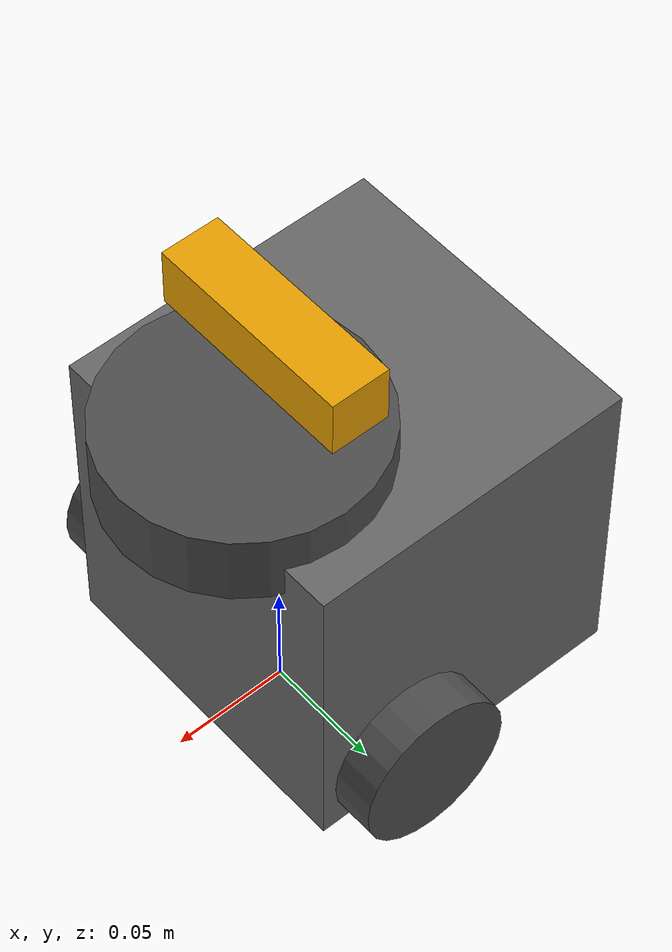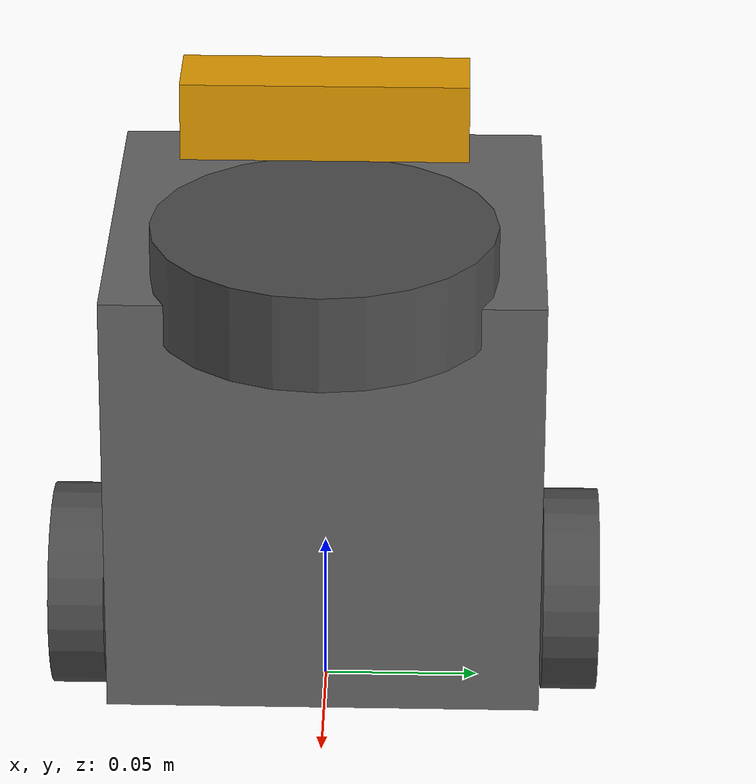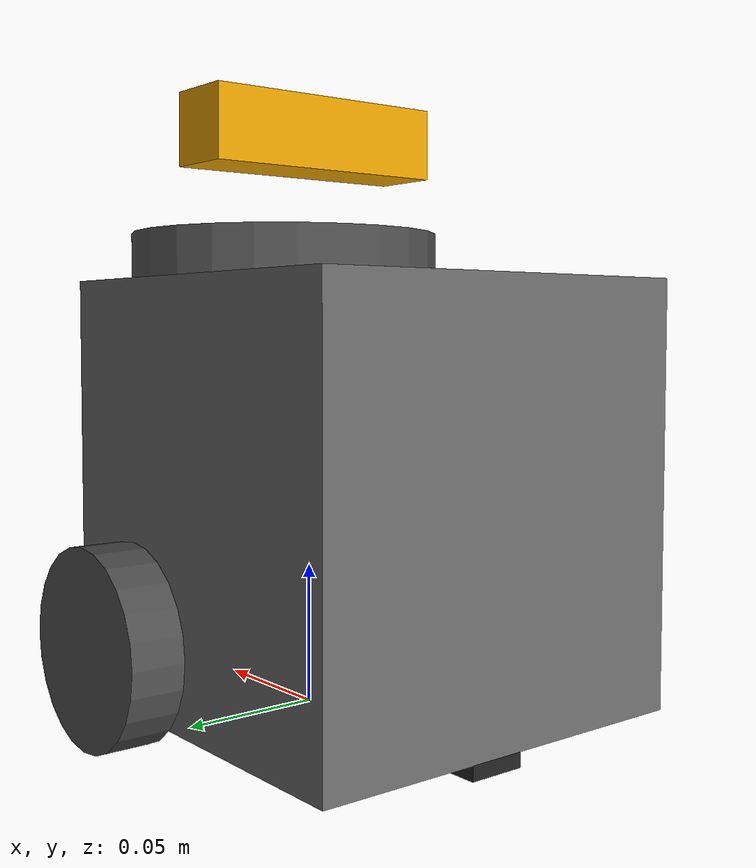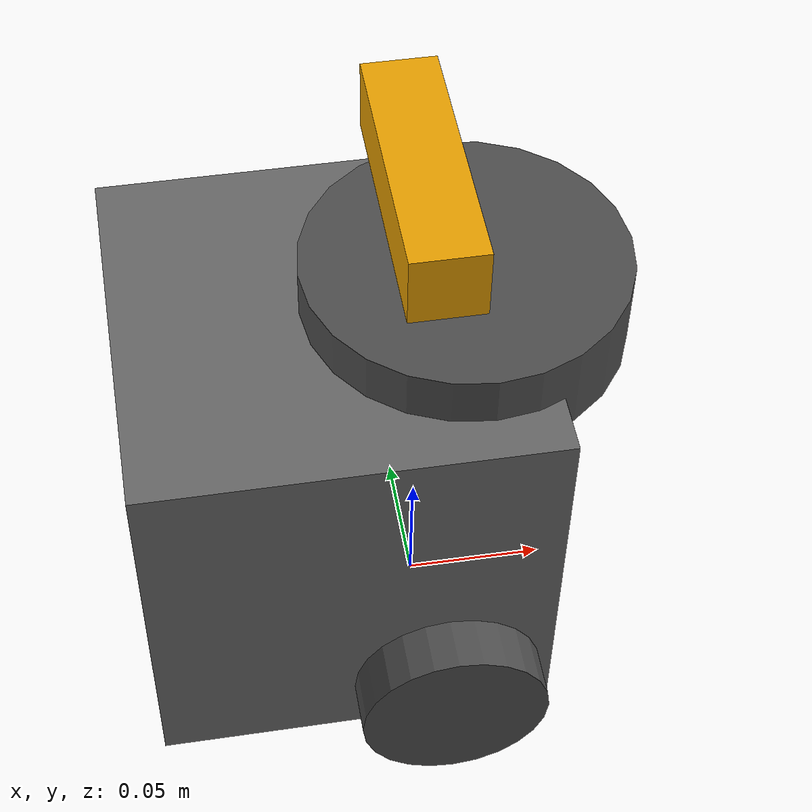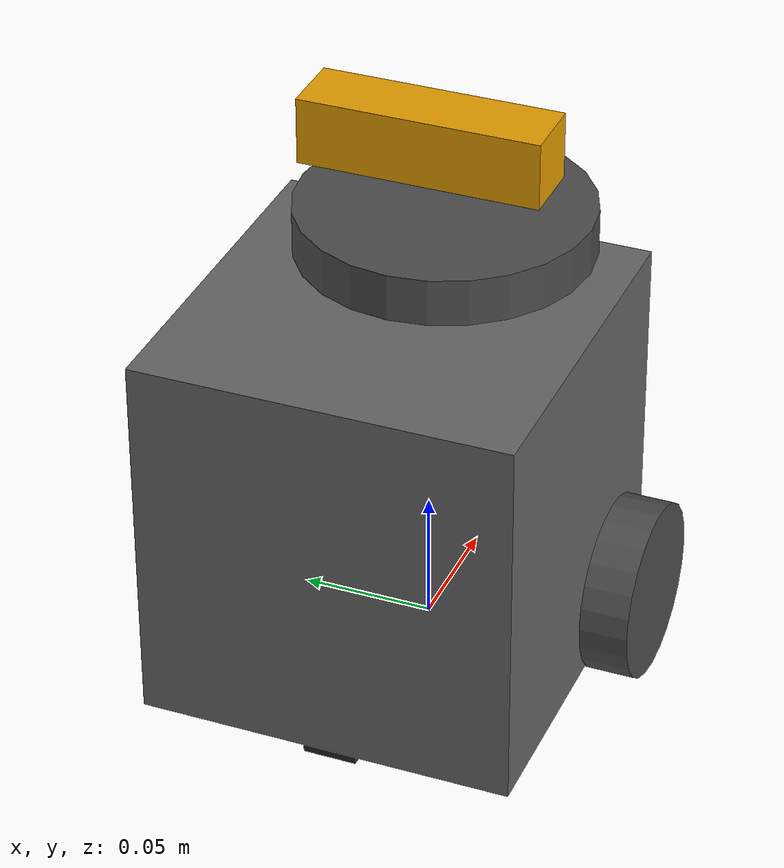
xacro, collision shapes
<?xml version="1.0" ?>
<robot name="turtlebot3_burger" xmlns:xacro="http://ros.org/wiki/xacro">
  <xacro:include filename="$(find car_sim_description)/urdf/common/common_properties.xacro"/>
  <xacro:include filename="$(find car_sim_description)/urdf/turtlebot/turtlebot3_burger.gazebo.xacro"/>

  <link name="base_footprint"/>

  <joint name="base_joint" type="fixed">
    <parent link="base_footprint"/>
    <child link="base_link"/>
    <origin xyz="0.0 0.0 0.010" rpy="0 0 0"/>
  </joint>

  <link name="base_link">
    <visual>
      <origin xyz="-0.032 0 0.0" rpy="0 0 0"/>
      <geometry>
        <mesh filename="package://car_sim_description/meshes/bases/burger_base.stl" scale="0.001 0.001 0.001"/>
      </geometry>
      <material name="light_black"/>
    </visual>

    <collision>
      <origin xyz="-0.032 0 0.070" rpy="0 0 0"/>
      <geometry>
        <box size="0.140 0.140 0.143"/>
      </geometry>
    </collision>

    <inertial>
      <origin xyz="0 0 0" rpy="0 0 0"/>
      <mass value="8.2573504e-01"/>
      <inertia ixx="2.2124416e-03" ixy="-1.2294101e-05" ixz="3.4938785e-05"
               iyy="2.1193702e-03" iyz="-5.0120904e-06"
               izz="2.0064271e-03" />
    </inertial>
  </link>

  <joint name="wheel_left_joint" type="continuous">
    <parent link="base_link"/>
    <child link="wheel_left_link"/>
    <origin xyz="0.0 0.08 0.023" rpy="-1.57 0 0"/>
    <axis xyz="0 0 1"/>
  </joint>

  <link name="wheel_left_link">
    <visual>
      <origin xyz="0 0 0" rpy="1.57 0 0"/>
      <geometry>
        <mesh filename="package://car_sim_description/meshes/wheels/left_tire.stl" scale="0.001 0.001 0.001"/>
      </geometry>
      <material name="dark"/>
    </visual>

    <collision>
      <origin xyz="0 0 0" rpy="0 0 0"/>
      <geometry>
        <cylinder length="0.018" radius="0.033"/>
      </geometry>
    </collision>

    <inertial>
      <origin xyz="0 0 0" />
      <mass value="2.8498940e-02" />
      <inertia ixx="1.1175580e-05" ixy="-4.2369783e-11" ixz="-5.9381719e-09"
               iyy="1.1192413e-05" iyz="-1.4400107e-11"
               izz="2.0712558e-05" />
      </inertial>
  </link>

  <joint name="wheel_right_joint" type="continuous">
    <parent link="base_link"/>
    <child link="wheel_right_link"/>
    <origin xyz="0.0 -0.080 0.023" rpy="-1.57 0 0"/>
    <axis xyz="0 0 1"/>
  </joint>

  <link name="wheel_right_link">
    <visual>
      <origin xyz="0 0 0" rpy="1.57 0 0"/>
      <geometry>
        <mesh filename="package://car_sim_description/meshes/wheels/right_tire.stl" scale="0.001 0.001 0.001"/>
      </geometry>
      <material name="dark"/>
    </visual>

    <collision>
      <origin xyz="0 0 0" rpy="0 0 0"/>
      <geometry>
        <cylinder length="0.018" radius="0.033"/>
      </geometry>
    </collision>

    <inertial>
      <origin xyz="0 0 0" />
      <mass value="2.8498940e-02" />
      <inertia ixx="1.1175580e-05" ixy="-4.2369783e-11" ixz="-5.9381719e-09"
               iyy="1.1192413e-05" iyz="-1.4400107e-11"
               izz="2.0712558e-05" />
      </inertial>
  </link>

  <joint name="caster_back_joint" type="fixed">
    <parent link="base_link"/>
    <child link="caster_back_link"/>
    <origin xyz="-0.081 0 -0.004" rpy="-1.57 0 0"/>
  </joint>

  <link name="caster_back_link">
    <collision>
      <origin xyz="0 0.001 0" rpy="0 0 0"/>
      <geometry>
        <box size="0.030 0.009 0.020"/>
      </geometry>
    </collision>

    <inertial>
      <origin xyz="0 0 0" />
      <mass value="0.005" />
      <inertia ixx="0.001" ixy="0.0" ixz="0.0"
               iyy="0.001" iyz="0.0"
               izz="0.001" />
    </inertial>
  </link>

  <joint name="imu_joint" type="fixed">
    <parent link="base_link"/>
    <child link="imu_link"/>
    <origin xyz="-0.032 0 0.068" rpy="0 0 0"/>
  </joint>

  <link name="imu_link"/>

  <joint name="scan_joint" type="fixed">
    <parent link="base_link"/>
    <child link="base_scan"/>
    <origin xyz="0 0 0.15" rpy="0 0 0"/>
  </joint>

  <link name="base_scan">
    <visual>
      <origin xyz="0 0 0.0" rpy="0 0 0"/>
      <geometry>
        <mesh filename="package://car_sim_description/meshes/sensors/lds.stl" scale="0.001 0.001 0.001"/>
      </geometry>
      <material name="dark"/>
    </visual>

    <collision>
      <origin xyz="0.015 0 -0.0065" rpy="0 0 0"/>
      <geometry>
        <cylinder length="0.0315" radius="0.055"/>
      </geometry>
    </collision>

    <inertial>
      <mass value="0" />
      <origin xyz="0 0 0" />
      <inertia ixx="0.001" ixy="0.0" ixz="0.0"
               iyy="0.001" iyz="0.0"
               izz="0.001" />
    </inertial>
  </link>

  <xacro:include filename="$(find realsense_ros_gazebo)/xacro/depthcam.xacro"/>

  <xacro:realsense_d435 sensor_name="d435_f" parent_link="base_link" rate="20">
    <origin rpy="0 0 0 " xyz="0 0 0.18"/>
  </xacro:realsense_d435>

</robot>

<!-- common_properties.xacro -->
<robot name="xacro_properties" xmlns:xacro="http://ros.org/wiki/xacro">
  <xacro:property name="M_PI" value="3.1415926535897931" />

  <!-- Init colour -->
  <material name="black">
      <color rgba="0.0 0.0 0.0 1.0"/>
  </material>

  <material name="dark">
    <color rgba="0.3 0.3 0.3 1.0"/>
  </material>
  <material name="light_black">
    <color rgba="0.4 0.4 0.4 1.0"/>
  </material>

  <material name="blue">
    <color rgba="0.0 0.0 0.8 1.0"/>
  </material>

  <material name="green">
    <color rgba="0.0 0.8 0.0 1.0"/>
  </material>

  <material name="grey">
    <color rgba="0.5 0.5 0.5 1.0"/>
  </material>

  <material name="orange">
    <color rgba="${255/255} ${108/255} ${10/255} 1.0"/>
  </material>

  <material name="brown">
    <color rgba="${222/255} ${207/255} ${195/255} 1.0"/>
  </material>

  <material name="red">
    <color rgba="0.8 0.0 0.0 1.0"/>
  </material>

  <material name="white">
    <color rgba="1.0 1.0 1.0 1.0"/>
  </material>
</robot>

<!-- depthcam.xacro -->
<robot xmlns:xacro="http://www.ros.org/wiki/xacro">

  <xacro:include filename="$(find realsense_ros_gazebo)/xacro/inertia_calc.xacro"/>

  <!-- INTEL REALSENSE D435 -->

  <xacro:macro name="realsense_d435" params="sensor_name parent_link *origin rate">

    <xacro:property name="d435_cam_depth_to_left_ir_offset" value="0.0"/>
    <xacro:property name="d435_cam_depth_to_right_ir_offset" value="-0.050"/>
    <xacro:property name="d435_cam_depth_to_color_offset" value="0.015"/>
    <xacro:property name="d435_cam_width" value="0.090"/>
    <xacro:property name="d435_cam_height" value="0.025"/>
    <xacro:property name="d435_cam_depth" value="0.02505"/>
    <xacro:property name="d435_cam_mass" value="0.00000001"/>
    <xacro:property name="d435_cam_mount_from_center_offset" value="0.0149"/>
    <xacro:property name="d435_cam_depth_px" value="${d435_cam_mount_from_center_offset}"/>
    <xacro:property name="d435_cam_depth_py" value="0.0175"/>
    <xacro:property name="d435_cam_depth_pz" value="${d435_cam_height/2}"/>

    <!-- camera body, with origin at bottom screw mount -->
    <joint name="${sensor_name}_joint" type="fixed">
      <xacro:insert_block name="origin" />
      <parent link="${parent_link}"/>
      <child link="${sensor_name}_bottom_screw_frame" />
    </joint>
    <link name="${sensor_name}_bottom_screw_frame"/>

    <joint name="${sensor_name}_link_joint" type="fixed">
      <origin xyz="0 ${d435_cam_depth_py} ${d435_cam_depth_pz}" rpy="0 0 0"/>
      <parent link="${sensor_name}_bottom_screw_frame"/>
      <child link="${sensor_name}_link" />
    </joint>

    <link name="${sensor_name}_link">
      <visual>
        <origin xyz="${d435_cam_mount_from_center_offset} ${-d435_cam_depth_py} 0" rpy="${pi/2} 0 ${pi/2}"/>
        <geometry>
          <mesh filename="package://realsense_ros_gazebo/meshes/realsense_d435.stl" />
        </geometry>
      </visual>
      <collision>
        <origin xyz="0 ${-d435_cam_depth_py} 0" rpy="0 0 0"/>
        <geometry>
          <box size="${d435_cam_depth} ${d435_cam_width} ${d435_cam_height}"/>
        </geometry>
      </collision>
      <inertial>
        <mass value="${d435_cam_mass}" />
        <origin xyz="0 ${-d435_cam_depth_py} 0" rpy="0 0 0"/>
        <xacro:box_inertia m="${d435_cam_mass}" x="${d435_cam_depth}" y="${d435_cam_width}" z="${d435_cam_height}"/>
      </inertial>
    </link>

    <!-- camera depth joints and links -->
    <joint name="${sensor_name}_depth_joint" type="fixed">
      <origin xyz="0 0 0" rpy="0 0 0"/>
      <parent link="${sensor_name}_link"/>
      <child link="${sensor_name}_depth_frame" />
    </joint>
    <link name="${sensor_name}_depth_frame"/>

    <joint name="${sensor_name}_depth_optical_joint" type="fixed">
      <origin xyz="0 0 0" rpy="${-pi/2} 0 ${-pi/2}" />
      <parent link="${sensor_name}_depth_frame" />
      <child link="${sensor_name}_depth_optical_frame" />
    </joint>
    <link name="${sensor_name}_depth_optical_frame"/>

    <!-- camera left IR joints and links -->
    <joint name="${sensor_name}_left_ir_joint" type="fixed">
      <origin xyz="0 ${d435_cam_depth_to_left_ir_offset} 0" rpy="0 0 0" />
      <parent link="${sensor_name}_depth_frame" />
      <child link="${sensor_name}_left_ir_frame" />
    </joint>
    <link name="${sensor_name}_left_ir_frame"/>

    <joint name="${sensor_name}_left_ir_optical_joint" type="fixed">
      <origin xyz="0 0 0" rpy="${-pi/2} 0 ${-pi/2}" />
      <parent link="${sensor_name}_left_ir_frame" />
      <child link="${sensor_name}_left_ir_optical_frame" />
    </joint>
    <link name="${sensor_name}_left_ir_optical_frame"/>

    <!-- camera right IR joints and links -->
    <joint name="${sensor_name}_right_ir_joint" type="fixed">
      <origin xyz="0 ${d435_cam_depth_to_right_ir_offset} 0" rpy="0 0 0" />
      <parent link="${sensor_name}_depth_frame" />
      <child link="${sensor_name}_right_ir_frame" />
    </joint>
    <link name="${sensor_name}_right_ir_frame"/>

    <joint name="${sensor_name}_right_ir_optical_joint" type="fixed">
      <origin xyz="0 0 0" rpy="${-pi/2} 0 ${-pi/2}" />
      <parent link="${sensor_name}_right_ir_frame" />
      <child link="${sensor_name}_right_ir_optical_frame" />
    </joint>
    <link name="${sensor_name}_right_ir_optical_frame"/>

    <!-- camera color joints and links -->
    <joint name="${sensor_name}_color_joint" type="fixed">
      <origin xyz="0 ${d435_cam_depth_to_color_offset} 0" rpy="0 0 0" />
      <parent link="${sensor_name}_depth_frame" />
      <child link="${sensor_name}_color_frame" />
    </joint>
    <link name="${sensor_name}_color_frame"/>

    <joint name="${sensor_name}_color_optical_joint" type="fixed">
      <origin xyz="0 0 0" rpy="${-pi/2} 0 ${-pi/2}" />
      <parent link="${sensor_name}_color_frame" />
      <child link="${sensor_name}_color_optical_frame" />
    </joint>
    <link name="${sensor_name}_color_optical_frame"/>

    <!-- gazebo plugin -->

    <xacro:property name="deg_to_rad" value="0.01745329251994329577" />

    <gazebo reference="${sensor_name}_link">
      <self_collide>0</self_collide>
      <enable_wind>0</enable_wind>
      <kinematic>0</kinematic>
      <gravity>1</gravity>
      <mu2>1</mu2>
      <fdir1>0 0 0</fdir1>
      <kp>1e+13</kp>
      <kd>1</kd>

      <sensor name="${sensor_name}_color" type="camera">
        <camera name="${sensor_name}">
          <horizontal_fov>${69.4*deg_to_rad}</horizontal_fov>
          <image>
            <width>640</width>
            <height>480</height>
            <format>RGB_INT8</format>
          </image>
          <clip>
            <near>0.1</near>
            <far>100</far>
          </clip>
          <noise>
            <type>gaussian</type>
            <mean>0.0</mean>
            <stddev>0.007</stddev>
          </noise>
        </camera>
        <always_on>1</always_on>
        <update_rate>30</update_rate>
        <visualize>1</visualize>
      </sensor>
      <sensor name="${sensor_name}_ired1" type="camera">
        <camera name="${sensor_name}">
          <horizontal_fov>${85.2*deg_to_rad}</horizontal_fov>
          <image>
            <width>1280</width>
            <height>720</height>
            <format>L_INT8</format>
          </image>
          <clip>
            <near>0.1</near>
            <far>100</far>
          </clip>
          <noise>
            <type>gaussian</type>
            <mean>0.0</mean>
            <stddev>0.05</stddev>
          </noise>
        </camera>
        <always_on>1</always_on>
        <update_rate>90</update_rate>
        <visualize>0</visualize>
      </sensor>
      <sensor name="${sensor_name}_ired2" type="camera">
        <camera name="${sensor_name}">
          <horizontal_fov>${85.2*deg_to_rad}</horizontal_fov>
          <image>
            <width>1280</width>
            <height>720</height>
            <format>L_INT8</format>
          </image>
          <clip>
            <near>0.1</near>
            <far>100</far>
          </clip>
          <noise>
            <type>gaussian</type>
            <mean>0.0</mean>
            <stddev>0.05</stddev>
          </noise>
        </camera>
        <always_on>1</always_on>
        <update_rate>90</update_rate>
        <visualize>0</visualize>
      </sensor>
      <sensor name="${sensor_name}_depth" type="depth">
        <camera name="${sensor_name}">
          <horizontal_fov>${85.2*deg_to_rad}</horizontal_fov>
          <image>
            <width>1280</width>
            <height>720</height>
          </image>
          <clip>
            <near>0.1</near>
            <far>100</far>
          </clip>
          <noise>
            <type>gaussian</type>
            <mean>0.0</mean>
            <stddev>0.100</stddev>
          </noise>
        </camera>
        <always_on>1</always_on>
        <update_rate>90</update_rate>
        <visualize>0</visualize>
      </sensor>
    </gazebo>

    <gazebo>
      <plugin name="${sensor_name}" filename="librealsense_gazebo_plugin.so">
        <prefix>${sensor_name}_</prefix>
        <depthUpdateRate>${rate}</depthUpdateRate>
        <colorUpdateRate>${rate}</colorUpdateRate>
        <infraredUpdateRate>${rate}</infraredUpdateRate>
        <depthTopicName>depth/image_raw</depthTopicName>
        <depthCameraInfoTopicName>depth/camera_info</depthCameraInfoTopicName>
        <colorTopicName>color/image_raw</colorTopicName>
        <colorCameraInfoTopicName>color/camera_info</colorCameraInfoTopicName>
        <infrared1TopicName>infra1/image_raw</infrared1TopicName>
        <infrared1CameraInfoTopicName>infra1/camera_info</infrared1CameraInfoTopicName>
        <infrared2TopicName>infra2/image_raw</infrared2TopicName>
        <infrared2CameraInfoTopicName>infra2/camera_info</infrared2CameraInfoTopicName>
        <colorOpticalframeName>${sensor_name}_color_optical_frame</colorOpticalframeName>
        <depthOpticalframeName>${sensor_name}_depth_optical_frame</depthOpticalframeName>
        <infrared1OpticalframeName>${sensor_name}_infrared1_optical_frame</infrared1OpticalframeName>
        <infrared2OpticalframeName>${sensor_name}_infrared2_optical_frame</infrared2OpticalframeName>
        <rangeMinDepth>0.2</rangeMinDepth>
        <rangeMaxDepth>10.0</rangeMaxDepth>
        <pointCloud>false</pointCloud>
        <pointCloudTopicName>depth/color/points</pointCloudTopicName>
        <pointCloudCutoff>0.25</pointCloudCutoff>
        <pointCloudCutoffMax>9.0</pointCloudCutoffMax>
      </plugin>
    </gazebo>

  </xacro:macro>

  <!-- INTEL REALSENSE R200 -->

  <xacro:macro name="realsense_R200" params="sensor_name parent_link rate *origin">

      <link name="${sensor_name}_R200_camera">
          <visual>
              <origin rpy="0 0 0" xyz="0 0 0"/>
              <geometry>
                  <mesh filename="package://realsense_ros_gazebo/meshes/realsense_r200/meshes/realsense.dae"/>
              </geometry>
          </visual>
          <collision>
              <geometry>
                  <box size="0.0078 0.130 0.0192"/>
              </geometry>
          </collision>
          <inertial>
              <mass value="0.00000001"/>
              <origin rpy="0 0 0" xyz="0 0 0"/>
              <inertia ixx="9.108e-05"
                       ixy="0"
                       ixz="0"
                       iyy="2.51e-06"
                       iyz="0"
                       izz="8.931e-05"/>
          </inertial>
      </link>

      <joint name="${sensor_name}_joint" type="fixed">
          <parent link="${parent_link}"/>
          <child link="${sensor_name}_R200_camera"/>
          <xacro:insert_block name="origin"/>
      </joint>

      <link name="${sensor_name}_color" />
      <link name="${sensor_name}_depth" />
      <link name="${sensor_name}_ired1" />
      <link name="${sensor_name}_ired2" />

      <joint name="${sensor_name}_color_joint" type="fixed">
          <parent link="${sensor_name}_R200_camera" />
          <child link="${sensor_name}_color" />
          <origin xyz="0 -0.046 0.004" rpy="${pi/2} ${pi} ${pi/2}"/>
      </joint>

      <joint name="${sensor_name}_depth_joint" type="fixed">
          <parent link="${sensor_name}_R200_camera" />
          <child link="${sensor_name}_depth" />
          <origin xyz="0 -0.03 0.004" rpy="0 0 0"/>
      </joint>

      <joint name="${sensor_name}_ired1_joint" type="fixed">
          <parent link="${sensor_name}_R200_camera" />
          <child link="${sensor_name}_ired1" />
          <origin xyz="0 -0.06 0.004" rpy="0 0 0"/>
      </joint>

      <joint name="${sensor_name}_ired2_joint" type="fixed">
          <parent link="${sensor_name}_R200_camera" />
          <child link="${sensor_name}_ired2" />
          <origin xyz="0 0.01 0.004" rpy="0 0 0"/>
      </joint>

      <gazebo reference="${sensor_name}_R200_camera">

          <self_collide>0</self_collide>
          <enable_wind>0</enable_wind>
          <kinematic>0</kinematic>
          <gravity>1</gravity>
          <mu>1</mu>
          <mu2>1</mu2>
          <fdir1>0 0 0</fdir1>
          <slip1>0</slip1>
          <slip2>0</slip2>
          <kp>1e+13</kp>
          <kd>1</kd>
          <max_vel>0.01</max_vel>
          <min_depth>0</min_depth>

          <sensor name="${sensor_name}_color" type="camera">
              <pose frame="">0 -0.046 0.004 0 0 0</pose>
              <camera name="${sensor_name}_R200_camera">
              <horizontal_fov>1.047</horizontal_fov>
              <image>
                  <width>640</width>
                  <height>480</height>
                  <format>RGB_INT8</format>
              </image>
              <clip>
                  <near>0.1</near>
                  <far>100</far>
              </clip>
              <noise>
                  <type>gaussian</type>
                  <mean>0.0</mean>
                  <stddev>0.007</stddev>
              </noise>
              </camera>
              <always_on>1</always_on>
              <update_rate>${rate}</update_rate>
              <visualize>1</visualize>
          </sensor>
          <sensor name="${sensor_name}_ired1" type="camera">
              <pose frame="">0 -0.06 0.004 0 0 0</pose>
              <camera name="${sensor_name}_R200_camera">
              <horizontal_fov>1.047</horizontal_fov>
              <image>
                  <width>640</width>
                  <height>480</height>
                  <format>L_INT8</format>
              </image>
              <clip>
                  <near>0.1</near>
                  <far>100</far>
              </clip>
              <noise>
                  <type>gaussian</type>
                  <mean>0.0</mean>
                  <stddev>0.05</stddev>
              </noise>
              </camera>
              <always_on>1</always_on>
              <update_rate>${rate}</update_rate>
              <visualize>0</visualize>
          </sensor>
          <sensor name="${sensor_name}_ired2" type="camera">
              <pose frame="">0 0.01 0.004 0 0 0</pose>
              <camera name="${sensor_name}_R200_camera">
              <horizontal_fov>1.047</horizontal_fov>
              <image>
                  <width>640</width>
                  <height>480</height>
                  <format>L_INT8</format>
              </image>
              <clip>
                  <near>0.1</near>
                  <far>100</far>
              </clip>
              <noise>
                  <type>gaussian</type>
                  <mean>0.0</mean>
                  <stddev>0.05</stddev>
              </noise>
              </camera>
              <always_on>1</always_on>
              <update_rate>${rate}</update_rate>
              <visualize>0</visualize>
          </sensor>
          <sensor name="${sensor_name}_depth" type="depth">
              <pose frame="">0 -0.03 0.004 0 0 0</pose>
              <camera name="${sensor_name}_R200_camera">
              <horizontal_fov>1.047</horizontal_fov>
              <image>
                      <width>640</width>
                      <height>480</height>
              </image>
              <clip>
                      <near>0.1</near>
                      <far>100</far>
              </clip>
              <noise>
                      <type>gaussian</type>
                      <mean>0.0</mean>
                      <stddev>0.100</stddev>
              </noise>
              </camera>
              <always_on>1</always_on>
              <update_rate>60</update_rate>
              <visualize>0</visualize>
          </sensor>
      </gazebo>

      <gazebo>
        <plugin name="${sensor_name}" filename="librealsense_gazebo_plugin.so">
          <prefix>${sensor_name}_</prefix>
          <depthUpdateRate>${rate}</depthUpdateRate>
          <colorUpdateRate>${rate}</colorUpdateRate>
          <infraredUpdateRate>${rate}</infraredUpdateRate>
          <depthTopicName>depth/image_raw</depthTopicName>
          <depthCameraInfoTopicName>depth/camera_info</depthCameraInfoTopicName>
          <colorTopicName>color/image_raw</colorTopicName>
          <colorCameraInfoTopicName>color/camera_info</colorCameraInfoTopicName>
          <infrared1TopicName>infra1/image_raw</infrared1TopicName>
          <infrared1CameraInfoTopicName>infra1/camera_info</infrared1CameraInfoTopicName>
          <infrared2TopicName>infra2/image_raw</infrared2TopicName>
          <infrared2CameraInfoTopicName>infra2/camera_info</infrared2CameraInfoTopicName>
          <colorOpticalframeName>${sensor_name}_color_optical_frame</colorOpticalframeName>
          <depthOpticalframeName>${sensor_name}_depth_optical_frame</depthOpticalframeName>
          <infrared1OpticalframeName>${sensor_name}_infrared1_optical_frame</infrared1OpticalframeName>
          <infrared2OpticalframeName>${sensor_name}_infrared2_optical_frame</infrared2OpticalframeName>
          <rangeMinDepth>0.2</rangeMinDepth>
          <rangeMaxDepth>10.0</rangeMaxDepth>
          <pointCloud>false</pointCloud>
          <pointCloudTopicName>depth/color/points</pointCloudTopicName>
          <pointCloudCutoff>0.25</pointCloudCutoff>
          <pointCloudCutoffMax>9.0</pointCloudCutoffMax>
        </plugin>
      </gazebo>

  </xacro:macro>

</robot>
